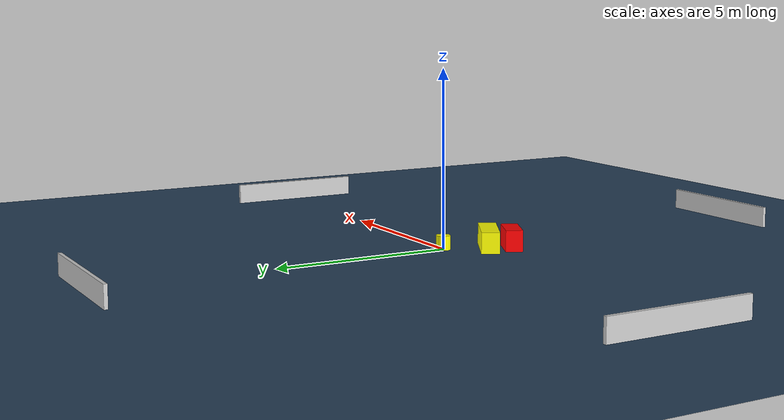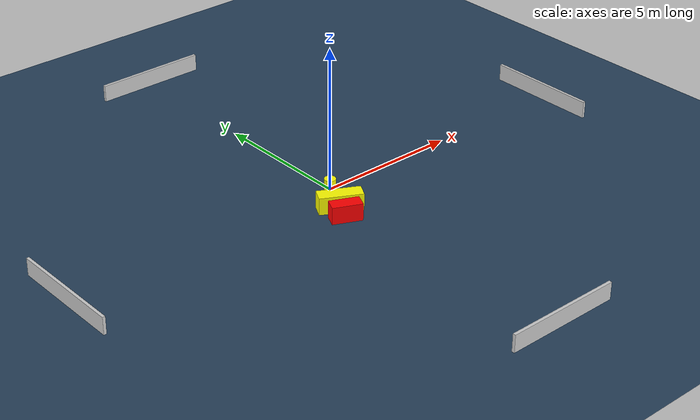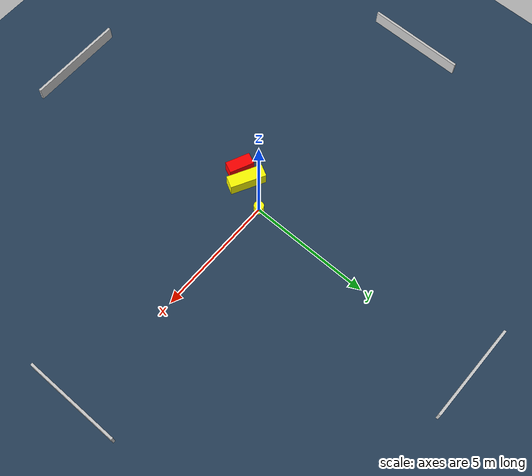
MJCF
<?xml version="1.0" ?>
<mujoco model="generated_environment">
  <option timestep="0.01" integrator="RK4" cone="elliptic"/>
  <default>
    <geom density="1"/>
  </default>
  <asset>
    <texture builtin="gradient" height="3072" name="skybox" rgb1="0.3 0.5 0.7" rgb2="0 0 0" type="skybox" width="512"/>
    <texture builtin="checker" height="300" name="groundplane" rgb1="0.2 0.3 0.4" rgb2="0.1 0.2 0.3" type="2d" width="300"/>
    <material name="groundplane" reflectance="0.2" texrepeat="5 5" texture="groundplane"/>
  </asset>
  <worldbody>
    <light dir="0 0 -1" directional="true" pos="0 0 1.5"/>
    <geom condim="3" friction="0.5 0.005 0.001" material="groundplane" name="floor" pos="0 0 0" size="0 0 0.05" type="plane"/>
    <body name="walls">
      <geom name="wall_1" condim="4" pos="-10.0 0.0 0.3" rgba="0.800000011920929 0.800000011920929 0.800000011920929 1.0" size="0.05 2.0 0.3" type="box"/>
      <geom name="wall_2" condim="4" pos="10.0 0.0 0.3" rgba="0.800000011920929 0.800000011920929 0.800000011920929 1.0" size="0.05 2.0 0.3" type="box"/>
      <geom name="wall_3" condim="4" pos="0.0 -10.0 0.3" rgba="0.800000011920929 0.800000011920929 0.800000011920929 1.0" size="2.0 0.05 0.3" type="box"/>
      <geom name="wall_4" condim="4" pos="0.0 10.0 0.3" rgba="0.800000011920929 0.800000011920929 0.800000011920929 1.0" size="2.0 0.05 0.3" type="box"/>
    </body>
    <body name="robot">
      <joint name="joint_x" type="slide" pos="0 0 0" axis="1 0 0"/>
      <joint name="joint_y" type="slide" pos="0 0 0" axis="0 1 0"/>
      <geom name="robot" type="cylinder" pos="0.0 0.0 0.2" size="0.2 0.2 0.0" mass="5.0" friction="1.0 0.005 0.0001" condim="4" rgba="1.0 1.0 0.0 1.0"/>
    </body>
    <body name="obstacle_1_movable">
      <geom name="obstacle_1_movable" condim="4" pos="-0.5633885703042479 -1.1306576237151782 0.3" euler="0 0 242.02499755558762" friction="0.0 0.005 0.001" rgba="1.0 1.0 0.0 1.0" size="0.25370605012670705 0.7323850944715755 0.3" type="box" mass="0.1"/>
      <joint type="free"/>
    </body>
    <body name="obstacle_2_static">
      <geom name="obstacle_2_static" condim="4" pos="-0.8316435110282039 -1.710025892784806 0.3" euler="0 0 65.54151670450634" friction="0.0 0.005 0.001" rgba="1.0 0.0 0.0 1.0" size="0.23739839375922622 0.5071903488238996 0.3" type="box"/>
    </body>
  </worldbody>
  <actuator>
    <motor name="actuator_x" joint="joint_x" gear="1" ctrlrange="-1 1"/>
    <motor name="actuator_y" joint="joint_y" gear="1" ctrlrange="-1 1"/>
  </actuator>
</mujoco>
